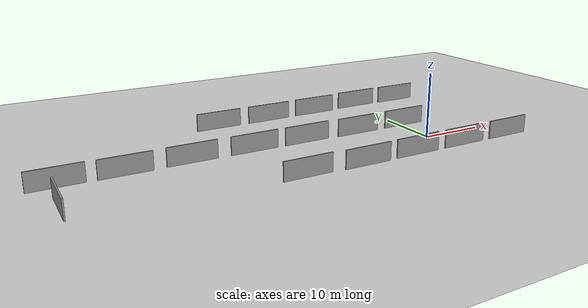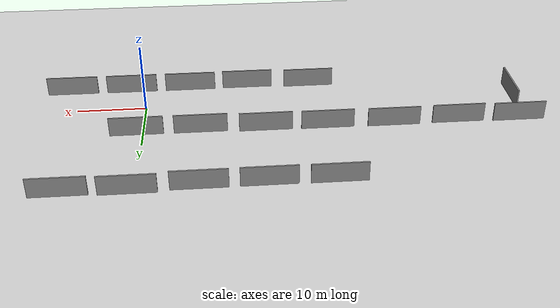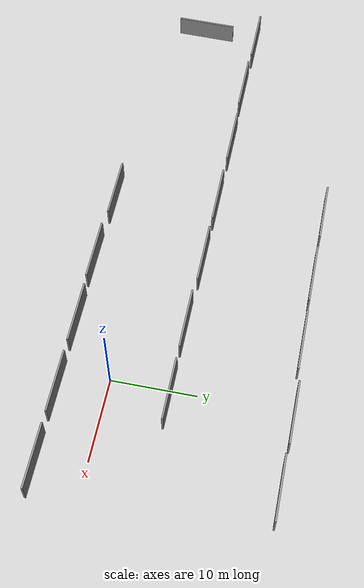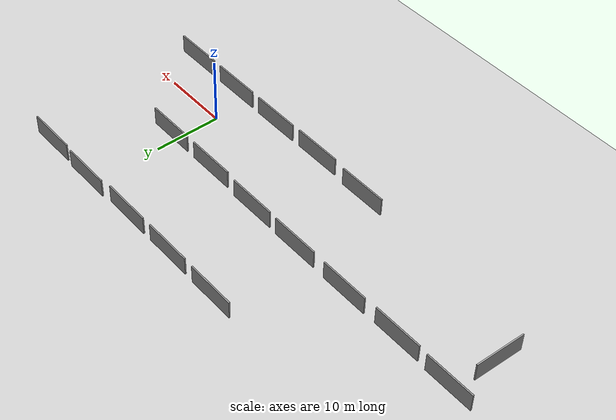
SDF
<sdf version="1.7">
 <world name="default">
  <light name="sun" type="directional">
   <pose>0 0 10 0 -0 0</pose>
   <diffuse>0.8 0.8 0.8 1</diffuse>
   <specular>0.2 0.2 0.2 1</specular>
   <attenuation>
    <range>1000</range>
    <constant>0.9</constant>
    <linear>0.01</linear>
    <quadratic>0.001</quadratic>
   </attenuation>
   <direction>-0.5 0.1 -0.9</direction>
   <spot><inner_angle>0</inner_angle><outer_angle>0</outer_angle><falloff>0</falloff></spot>
  </light>
  <model name="ground_plane">
   <static>1</static>
   <link name="link">
    <collision name="collision">
     <geometry><plane><normal>0 0 1</normal><size>100 100</size></plane></geometry>
     <surface><friction><ode><mu>100</mu><mu2>50</mu2></ode></friction></surface>
    </collision>
    <visual name="visual">
     <cast_shadows>0</cast_shadows>
     <geometry><plane><normal>0 0 1</normal><size>100 100</size></plane></geometry>
     <material>
      <script><uri>file://media/materials/scripts/gazebo.material</uri><name>Gazebo/Grey</name></script>
     </material>
    </visual>
   </link>
  </model>
  <gravity>0 0 -9.8</gravity>
  <magnetic_field>6e-06 2.3e-05 -4.2e-05</magnetic_field>
  <atmosphere type="adiabatic"/>
  <physics type="ode">
   <max_step_size>0.001</max_step_size>
   <real_time_factor>1</real_time_factor>
   <real_time_update_rate>1000</real_time_update_rate>
  </physics>
  <scene><ambient>0.4 0.4 0.4 1</ambient><background>0.7 0.7 0.7 1</background><shadows>1</shadows></scene>
  <audio><device>default</device></audio>
  <spherical_coordinates>
   <surface_model>EARTH_WGS84</surface_model>
   <latitude_deg>0</latitude_deg>
   <longitude_deg>0</longitude_deg>
   <elevation>0</elevation>
   <heading_deg>0</heading_deg>
  </spherical_coordinates>
  <model name="grey_wall">
   <static>1</static>
   <link name="link">
    <pose>0 0 1.4 0 -0 0</pose>
    <collision name="collision"><geometry><box><size>7.5 0.2 2.8</size></box></geometry></collision>
    <visual name="visual">
     <cast_shadows>0</cast_shadows>
     <geometry><box><size>7.5 0.2 2.8</size></box></geometry>
     <material>
      <script>
       <uri>model://grey_wall/materials/scripts</uri>
       <uri>model://grey_wall/materials/textures</uri>
       <name>vrc/grey_wall</name>
      </script>
     </material>
    </visual>
   </link>
   <pose>-24.5176 -5.29506 0 0 -0 0</pose>
  </model>
  <model name="grey_wall_0">
   <static>1</static>
   <link name="link">
    <pose>0 0 1.4 0 -0 0</pose>
    <collision name="collision"><geometry><box><size>7.5 0.2 2.8</size></box></geometry></collision>
    <visual name="visual">
     <cast_shadows>0</cast_shadows>
     <geometry><box><size>7.5 0.2 2.8</size></box></geometry>
     <material>
      <script>
       <uri>model://grey_wall/materials/scripts</uri>
       <uri>model://grey_wall/materials/textures</uri>
       <name>vrc/grey_wall</name>
      </script>
     </material>
    </visual>
   </link>
   <pose>-15.1288 -5.58119 0 0 -0 0</pose>
  </model>
  <model name="grey_wall_1">
   <static>1</static>
   <link name="link">
    <pose>0 0 1.4 0 -0 0</pose>
    <collision name="collision"><geometry><box><size>7.5 0.2 2.8</size></box></geometry></collision>
    <visual name="visual">
     <cast_shadows>0</cast_shadows>
     <geometry><box><size>7.5 0.2 2.8</size></box></geometry>
     <material>
      <script>
       <uri>model://grey_wall/materials/scripts</uri>
       <uri>model://grey_wall/materials/textures</uri>
       <name>vrc/grey_wall</name>
      </script>
     </material>
    </visual>
   </link>
   <pose>-6.409 -5.48731 0 0 -0 0</pose>
  </model>
  <model name="grey_wall_2">
   <static>1</static>
   <link name="link">
    <pose>0 0 1.4 0 -0 0</pose>
    <collision name="collision"><geometry><box><size>7.5 0.2 2.8</size></box></geometry></collision>
    <visual name="visual">
     <cast_shadows>0</cast_shadows>
     <geometry><box><size>7.5 0.2 2.8</size></box></geometry>
     <material>
      <script>
       <uri>model://grey_wall/materials/scripts</uri>
       <uri>model://grey_wall/materials/textures</uri>
       <name>vrc/grey_wall</name>
      </script>
     </material>
    </visual>
   </link>
   <pose>2.45659 -5.50447 0 0 -0 0</pose>
  </model>
  <model name="grey_wall_3">
   <static>1</static>
   <link name="link">
    <pose>0 0 1.4 0 -0 0</pose>
    <collision name="collision"><geometry><box><size>7.5 0.2 2.8</size></box></geometry></collision>
    <visual name="visual">
     <cast_shadows>0</cast_shadows>
     <geometry><box><size>7.5 0.2 2.8</size></box></geometry>
     <material>
      <script>
       <uri>model://grey_wall/materials/scripts</uri>
       <uri>model://grey_wall/materials/textures</uri>
       <name>vrc/grey_wall</name>
      </script>
     </material>
    </visual>
   </link>
   <pose>11.3171 -5.52498 0 0 -0 0</pose>
  </model>
  <model name="grey_wall_4">
   <static>1</static>
   <link name="link">
    <pose>0 0 1.4 0 -0 0</pose>
    <collision name="collision"><geometry><box><size>7.5 0.2 2.8</size></box></geometry></collision>
    <visual name="visual">
     <cast_shadows>0</cast_shadows>
     <geometry><box><size>7.5 0.2 2.8</size></box></geometry>
     <material>
      <script>
       <uri>model://grey_wall/materials/scripts</uri>
       <uri>model://grey_wall/materials/textures</uri>
       <name>vrc/grey_wall</name>
      </script>
     </material>
    </visual>
   </link>
   <pose>-25.9875 20.5915 0 0 -0 0</pose>
  </model>
  <model name="grey_wall_5">
   <static>1</static>
   <link name="link">
    <pose>0 0 1.4 0 -0 0</pose>
    <collision name="collision"><geometry><box><size>7.5 0.2 2.8</size></box></geometry></collision>
    <visual name="visual">
     <cast_shadows>0</cast_shadows>
     <geometry><box><size>7.5 0.2 2.8</size></box></geometry>
     <material>
      <script>
       <uri>model://grey_wall/materials/scripts</uri>
       <uri>model://grey_wall/materials/textures</uri>
       <name>vrc/grey_wall</name>
      </script>
     </material>
    </visual>
   </link>
   <pose>-16.9811 20.5366 0 0 -0 0</pose>
  </model>
  <model name="grey_wall_6">
   <static>1</static>
   <link name="link">
    <pose>0 0 1.4 0 -0 0</pose>
    <collision name="collision"><geometry><box><size>7.5 0.2 2.8</size></box></geometry></collision>
    <visual name="visual">
     <cast_shadows>0</cast_shadows>
     <geometry><box><size>7.5 0.2 2.8</size></box></geometry>
     <material>
      <script>
       <uri>model://grey_wall/materials/scripts</uri>
       <uri>model://grey_wall/materials/textures</uri>
       <name>vrc/grey_wall</name>
      </script>
     </material>
    </visual>
   </link>
   <pose>-8.08467 20.5731 0 0 -0 0</pose>
  </model>
  <model name="grey_wall_7">
   <static>1</static>
   <link name="link">
    <pose>0 0 1.4 0 -0 0</pose>
    <collision name="collision"><geometry><box><size>7.5 0.2 2.8</size></box></geometry></collision>
    <visual name="visual">
     <cast_shadows>0</cast_shadows>
     <geometry><box><size>7.5 0.2 2.8</size></box></geometry>
     <material>
      <script>
       <uri>model://grey_wall/materials/scripts</uri>
       <uri>model://grey_wall/materials/textures</uri>
       <name>vrc/grey_wall</name>
      </script>
     </material>
    </visual>
   </link>
   <pose>0.874487 20.9156 0 0 -0 0</pose>
  </model>
  <model name="grey_wall_8">
   <static>1</static>
   <link name="link">
    <pose>0 0 1.4 0 -0 0</pose>
    <collision name="collision"><geometry><box><size>7.5 0.2 2.8</size></box></geometry></collision>
    <visual name="visual">
     <cast_shadows>0</cast_shadows>
     <geometry><box><size>7.5 0.2 2.8</size></box></geometry>
     <material>
      <script>
       <uri>model://grey_wall/materials/scripts</uri>
       <uri>model://grey_wall/materials/textures</uri>
       <name>vrc/grey_wall</name>
      </script>
     </material>
    </visual>
   </link>
   <pose>9.48636 20.7315 0 0 -0 0</pose>
  </model>
  <model name="grey_wall_9">
   <static>1</static>
   <link name="link">
    <pose>0 0 1.4 0 -0 0</pose>
    <collision name="collision"><geometry><box><size>7.5 0.2 2.8</size></box></geometry></collision>
    <visual name="visual">
     <cast_shadows>0</cast_shadows>
     <geometry><box><size>7.5 0.2 2.8</size></box></geometry>
     <material>
      <script>
       <uri>model://grey_wall/materials/scripts</uri>
       <uri>model://grey_wall/materials/textures</uri>
       <name>vrc/grey_wall</name>
      </script>
     </material>
    </visual>
   </link>
   <pose>-53.7752 7.54758 0 0 -0 0</pose>
  </model>
  <model name="grey_wall_10">
   <static>1</static>
   <link name="link">
    <pose>0 0 1.4 0 -0 0</pose>
    <collision name="collision"><geometry><box><size>7.5 0.2 2.8</size></box></geometry></collision>
    <visual name="visual">
     <cast_shadows>0</cast_shadows>
     <geometry><box><size>7.5 0.2 2.8</size></box></geometry>
     <material>
      <script>
       <uri>model://grey_wall/materials/scripts</uri>
       <uri>model://grey_wall/materials/textures</uri>
       <name>vrc/grey_wall</name>
      </script>
     </material>
    </visual>
   </link>
   <pose>-44.9067 7.37765 0 0 -0 0</pose>
  </model>
  <model name="grey_wall_11">
   <static>1</static>
   <link name="link">
    <pose>0 0 1.4 0 -0 0</pose>
    <collision name="collision"><geometry><box><size>7.5 0.2 2.8</size></box></geometry></collision>
    <visual name="visual">
     <cast_shadows>0</cast_shadows>
     <geometry><box><size>7.5 0.2 2.8</size></box></geometry>
     <material>
      <script>
       <uri>model://grey_wall/materials/scripts</uri>
       <uri>model://grey_wall/materials/textures</uri>
       <name>vrc/grey_wall</name>
      </script>
     </material>
    </visual>
   </link>
   <pose>-35.5603 7.48824 0 0 -0 0</pose>
  </model>
  <model name="grey_wall_12">
   <static>1</static>
   <link name="link">
    <pose>0 0 1.4 0 -0 0</pose>
    <collision name="collision"><geometry><box><size>7.5 0.2 2.8</size></box></geometry></collision>
    <visual name="visual">
     <cast_shadows>0</cast_shadows>
     <geometry><box><size>7.5 0.2 2.8</size></box></geometry>
     <material>
      <script>
       <uri>model://grey_wall/materials/scripts</uri>
       <uri>model://grey_wall/materials/textures</uri>
       <name>vrc/grey_wall</name>
      </script>
     </material>
    </visual>
   </link>
   <pose>-26.0566 7.40086 0 0 -0 0</pose>
  </model>
  <model name="grey_wall_13">
   <static>1</static>
   <link name="link">
    <pose>0 0 1.4 0 -0 0</pose>
    <collision name="collision"><geometry><box><size>7.5 0.2 2.8</size></box></geometry></collision>
    <visual name="visual">
     <cast_shadows>0</cast_shadows>
     <geometry><box><size>7.5 0.2 2.8</size></box></geometry>
     <material>
      <script>
       <uri>model://grey_wall/materials/scripts</uri>
       <uri>model://grey_wall/materials/textures</uri>
       <name>vrc/grey_wall</name>
      </script>
     </material>
    </visual>
   </link>
   <pose>-17.2851 7.31727 0 0 -0 0</pose>
  </model>
  <model name="grey_wall_14">
   <static>1</static>
   <link name="link">
    <pose>0 0 1.4 0 -0 0</pose>
    <collision name="collision"><geometry><box><size>7.5 0.2 2.8</size></box></geometry></collision>
    <visual name="visual">
     <cast_shadows>0</cast_shadows>
     <geometry><box><size>7.5 0.2 2.8</size></box></geometry>
     <material>
      <script>
       <uri>model://grey_wall/materials/scripts</uri>
       <uri>model://grey_wall/materials/textures</uri>
       <name>vrc/grey_wall</name>
      </script>
     </material>
    </visual>
   </link>
   <pose>-8.1238 7.06041 0 0 -0 0</pose>
  </model>
  <model name="grey_wall_15">
   <static>1</static>
   <link name="link">
    <pose>0 0 1.4 0 -0 0</pose>
    <collision name="collision"><geometry><box><size>7.5 0.2 2.8</size></box></geometry></collision>
    <visual name="visual">
     <cast_shadows>0</cast_shadows>
     <geometry><box><size>7.5 0.2 2.8</size></box></geometry>
     <material>
      <script>
       <uri>model://grey_wall/materials/scripts</uri>
       <uri>model://grey_wall/materials/textures</uri>
       <name>vrc/grey_wall</name>
      </script>
     </material>
    </visual>
   </link>
   <pose>0.831588 7.04459 0 0 -0 0</pose>
  </model>
  <model name="grey_wall_16">
   <static>1</static>
   <link name="link">
    <pose>0 0 1.4 0 -0 0</pose>
    <collision name="collision"><geometry><box><size>7.5 0.2 2.8</size></box></geometry></collision>
    <visual name="visual">
     <cast_shadows>0</cast_shadows>
     <geometry><box><size>7.5 0.2 2.8</size></box></geometry>
     <material>
      <script>
       <uri>model://grey_wall/materials/scripts</uri>
       <uri>model://grey_wall/materials/textures</uri>
       <name>vrc/grey_wall</name>
      </script>
     </material>
    </visual>
   </link>
   <pose>-54.7983 0.436819 0 0 0 -1.59816</pose>
  </model>
 </world>
</sdf>
